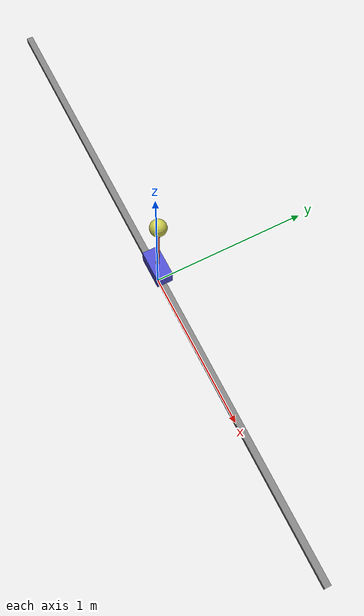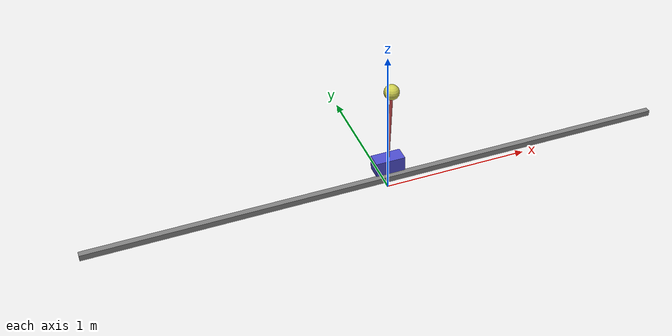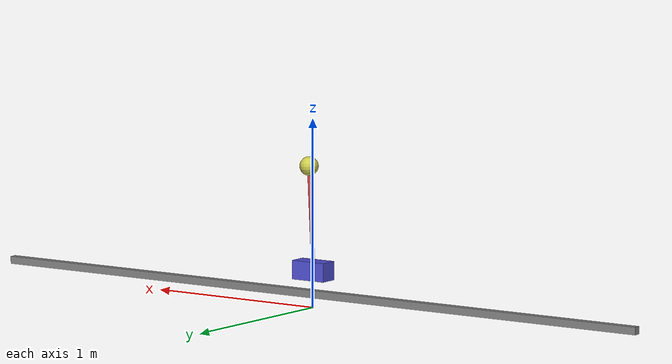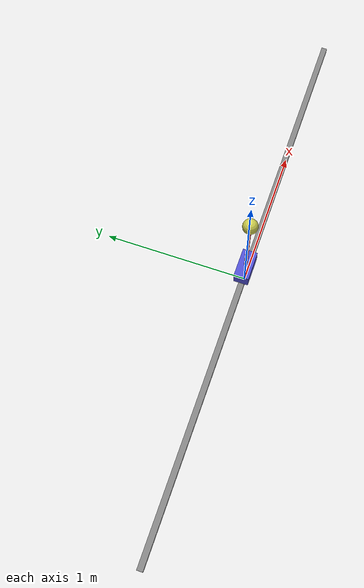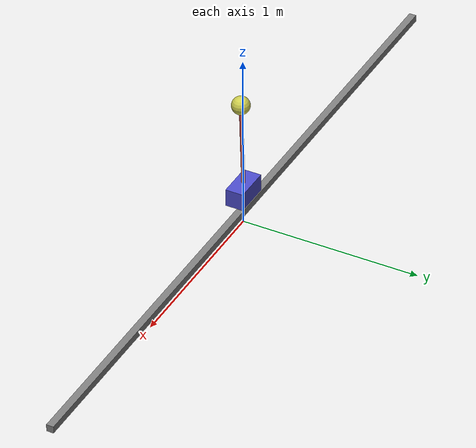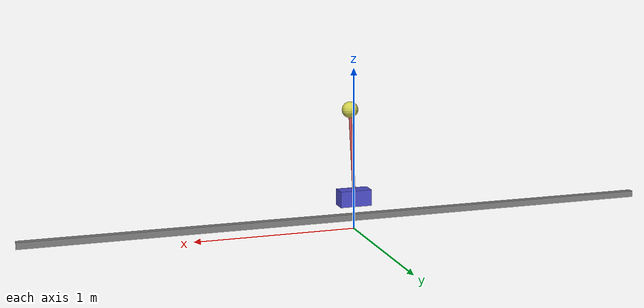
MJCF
<mujoco model="robot">
    <compiler angle="radian"/>

    <default>
        <geom density="1000" friction="1 0.005 0.0001"/>
        <joint damping="0.1" armature="0.01" frictionloss="0.01"/>

        <default class="cart">
            <geom type="box" rgba="0.3 0.3 0.8 1" contype="1" conaffinity="1"/>
        </default>
        <default class="pole">
            <geom type="cylinder" rgba="0.8 0.3 0.3 1" contype="1" conaffinity="1"/>
        </default>
        <default class="track">
            <!-- Make the track visual-only to avoid collisions -->
            <geom type="box" rgba="0.5 0.5 0.5 1" contype="0" conaffinity="0"/>
        </default>
    </default>

    <worldbody>
        <!-- Visual track (non-colliding) -->
        <geom name="track" class="track" size="2.0 0.02 0.02" pos="0 0 0.075" mass="0.1"/>

        <!-- Cart (slides in x) -->
        <body name="cart" pos="0 0 0.20">
            <site name="ImuSensor" pos="0 0 0" euler="0 0 0"/>
            <joint name="cart_slide" type="slide" axis="1 0 0" range="-1.5 1.5"/>
            <geom name="cart_body" class="cart" size="0.1 0.05 0.05" mass="1.0"/>

            <!-- Pendulum pole attached to cart top -->
            <body name="pole" pos="0 0 0.05" euler="0 0.05 0">
                <!-- Slight initial tilt about the hinge axis so it clearly falls -->
                <joint name="pole_hinge" type="hinge" axis="0 1 0" range="-3.14159 3.14159"/>
                <geom name="pole_rod" class="pole" size="0.01 0.25" pos="0 0 0.25" mass="0.1"/>
                <geom name="pole_tip" type="sphere" size="0.05" pos="0 0 0.5" rgba="0.8 0.8 0.3 1" mass="0.2"/>
            </body>
        </body>
    </worldbody>

    <contact>
        <!-- Exclude internal collisions -->
        <exclude body1="cart" body2="pole"/>
    </contact>

    <actuator>
        <!-- Force actuator for cart movement -->
        <motor name="cart_motor" joint="cart_slide"
               ctrllimited="true" ctrlrange="-50 50"
               forcelimited="true" forcerange="-200 200" gear="1"/>
    </actuator>

    <sensor>
        <framequat name="ImuSensor_Framequat" objtype="site" objname="ImuSensor"/>
        <velocimeter name="ImuSensor_Velocimeter" site="ImuSensor"/>
        <gyro name="ImuSensor_Gyro" site="ImuSensor"/>
        <accelerometer name="ImuSensor_Accelerometer" site="ImuSensor"/>
    </sensor>
</mujoco>
